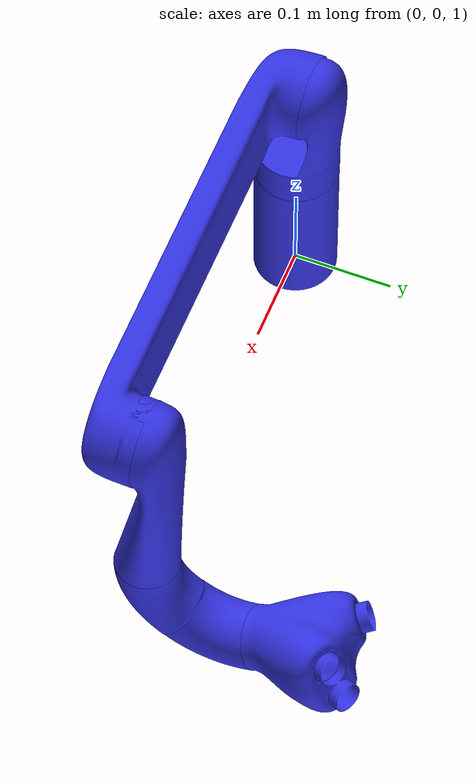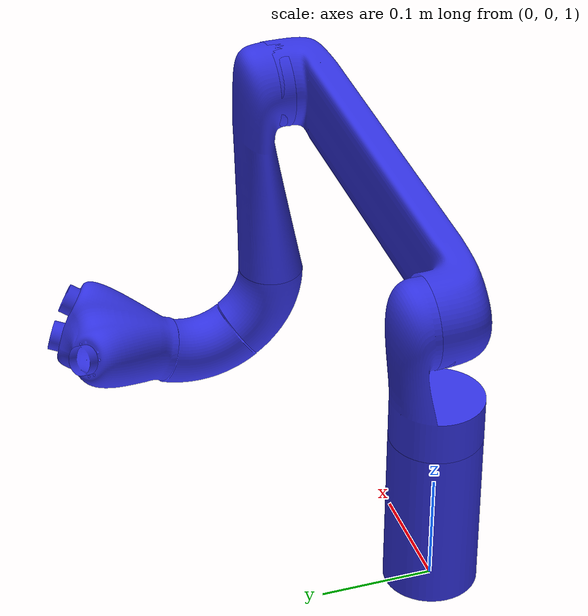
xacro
<?xml version="1.0"?>
<robot name="jaco"
	xmlns:xi="http://www.w3.org/2001/XInclude"
	xmlns:gazebo="http://playerstage.sourceforge.net/gazebo/xmlschema/#gz"
	xmlns:model="http://playerstage.sourceforge.net/gazebo/xmlschema/#model"
	xmlns:sensor="http://playerstage.sourceforge.net/gazebo/xmlschema/#sensor"
	xmlns:body="http://playerstage.sourceforge.net/gazebo/xmlschema/#body"
	xmlns:geom="http://playerstage.sourceforge.net/gazebo/xmlschema/#geom"
	xmlns:joint="http://playerstage.sourceforge.net/gazebo/xmlschema/#joint"
	xmlns:interface="http://playerstage.sourceforge.net/gazebo/xmlschema/#interface"
	xmlns:rendering="http://playerstage.sourceforge.net/gazebo/xmlschema/#rendering"
	xmlns:renderable="http://playerstage.sourceforge.net/gazebo/xmlschema/#renderable"
	xmlns:controller="http://playerstage.sourceforge.net/gazebo/xmlschema/#controller"
	xmlns:physics="http://playerstage.sourceforge.net/gazebo/xmlschema/#physics">

	<gazebo>
		<!-- controller for the 6 arm joints -->
		<controller:gazebo_ros_controller_manager name="gazebo_ros_controller_manager" plugin="libgazebo_ros_controller_manager.so">
		<alwaysOn>true</alwaysOn>
		<updateRate>1000.0</updateRate>
		<robotParam>robot_description</robotParam>
		</controller:gazebo_ros_controller_manager>
	</gazebo>

	<include filename="$(find jaco_description)/urdf/gazebo/jaco.gazebo.xacro" />
	<include filename="$(find jaco_description)/urdf/gazebo/jaco.transmissions.xacro" />

	<material name="JacoGrey">
	<color rgba="0.2 0.2 0.9 1.0"/>
	</material>

	<link name="world"/>
	<joint name="base_block_joint" type="fixed">
		<parent link="world" />
		<origin xyz="0 0 1" rpy="0 0 0" />
		<child link="jaco_base_link" />
	</joint>

	<!-- The base joint & link -->

	<link name="jaco_base_link">
		<inertial>
			<mass value="6" />
			<!--origin xyz="0 0 -0.0525" rpy="0 0 0"/-->
          		<origin xyz="0 0 0.0" rpy="0 0 0"/>
			<inertia ixx="100"  ixy="0"  ixz="0" iyy="100" iyz="0" izz="100" />
		</inertial>
		<visual>
			<material name="JacoGrey" />
			<!--origin xyz="0 0 -0.0525" rpy="0 0 0"/-->
			<geometry>
				<mesh filename="package://jaco_description/meshes/joint_1.dae"
				scale="0.001 0.001 0.001"/>
			</geometry>
		</visual>
		<collision>
			<!--origin xyz="0 0 -0.0525" rpy="0 0 0"/-->
			<geometry>
				<mesh filename="package://jaco_description/meshes/joint_1.dae"
				scale="0.001 0.001 0.001"/>
			</geometry>
		</collision>
	</link>
	<gazebo reference="jaco_base_link">
		<material>Gazebo/Yellow</material>
		<turnGravityOff>true</turnGravityOff>
	</gazebo>

	<!-- First revolute joint & link -->

	<joint name="jaco_joint_1" type="revolute">
		<!--origin xyz="0 0 0.2102" rpy="0 0 0"/-->
        	<origin xyz="0 0 0.2725" rpy="0 0 0"/>
		<axis xyz="0 0 -1" rpy="0 0 0"/>
		<parent link="jaco_base_link"/>
		<child link="jaco_link_1"/>
		<limit lower="-3.1415926535897931" upper="3.1415926535897931" effort="1" velocity="2.0"/>
	</joint>
	<link name="jaco_link_1">
		<inertial>
			<mass value="4.5"/>

			<inertia ixx="100.0" ixy="0.0"  ixz="0.0"  iyy="100.0"  iyz="0.0"  izz="100.0" />
			<origin/>
		</inertial>
		<visual>
			<material name="JacoGrey" />
			<origin xyz="0 0 -0.12" rpy="0 0 -1.570796327"/>
			<geometry>
				<mesh filename="package://jaco_description/meshes/joint_2.dae"
				scale="0.001 0.001 0.001"/>
			</geometry>
		</visual>
		<collision>
			<origin xyz="0 0 -0.12" rpy="0 0 -1.570796327"/>
			<geometry>
				<mesh filename="package://jaco_description/meshes/joint_2.dae"
				scale="0.001 0.001 0.001"/>
			</geometry>
		</collision>
	</link>
	<gazebo reference="jaco_link_1">
		<material>Gazebo/Red</material>
		<turnGravityOff>true</turnGravityOff>
	</gazebo>

	<!-- Second revolute joint & link -->

	<joint name="jaco_joint_2" type="revolute">
		<origin xyz="0 0 0" rpy="-1.570796327 0 0"/>
		<axis xyz="0 0 1"/>
		<parent link="jaco_link_1"/>
		<child link="jaco_link_2"/>
		<limit lower="-3.6651914291881" upper="0.57595865315813" effort="1" velocity="3.1415926535897931"/>
	</joint>
	<link name="jaco_link_2">
		<inertial>
			<mass value="3.8"/>
			<inertia ixx="100.0" ixy="0.0"  ixz="0.0"  iyy="100.0"  iyz="0.0"  izz="100.0" />
			<origin/>
		</inertial>
		<visual>
			<material name="JacoGrey" />
			<origin xyz="0 0 0.015" rpy="0 1.570796327 0"/>
			<geometry>
				<mesh filename="package://jaco_description/meshes/joint_3.dae"
				scale="0.001 0.001 0.001"/>
			</geometry>
		</visual>
		<collision>
			<origin xyz="0 0 0.015" rpy="0 1.570796327 0"/>
			<geometry>
				<mesh filename="package://jaco_description/meshes/joint_3.dae"
				scale="0.001 0.001 0.001"/>
			</geometry>
		</collision>
	</link>
	<gazebo reference="jaco_link_2">
		<material>Gazebo/Blue</material>
		<turnGravityOff>true</turnGravityOff>
	</gazebo>

	<!-- Third revolute joint & link -->

	<joint name="jaco_joint_3" type="revolute">
		<origin xyz="0.4100 0 0.012" rpy="0 0 0"/>
		<axis xyz="0 0 -1"/>
		<parent link="jaco_link_2"/>
		<child link="jaco_link_3"/>
		<limit lower="-1.221730476396" upper="4.2935099599061" effort="1" velocity="3.1415926535897931"/>
	</joint>
	<link name="jaco_link_3">
		<inertial>
			<mass value="2"/>
			<inertia ixx="100.0" ixy="0.0"  ixz="0.0"  iyy="100.0"  iyz="0.0"  izz="100.0" />
			<origin/>
		</inertial>
		<visual>
			<material name="JacoGrey" />
			<origin xyz="0 0 -0.012" rpy="0 1.570796327 1.570796327"/>
			<geometry>
				<mesh filename="package://jaco_description/meshes/joint_4.dae"
				scale="1.000 1.000 1.000"/>
			</geometry>
		</visual>
		<collision>
			<origin xyz="0 0 -0.012" rpy="0 1.570796327 1.570796327"/>
			<geometry>
				<mesh filename="package://jaco_description/meshes/joint_4.dae"
				scale="1.000 1.000 1.000"/>
			</geometry>
		</collision>
	</link>
	<gazebo reference="jaco_link_3">
		<material>Gazebo/Red</material>
		<turnGravityOff>true</turnGravityOff>
	</gazebo>

	<!-- Fourth revolute joint & link -->
	<joint name="jaco_joint_4" type="revolute">
		<origin xyz="0 0.24927682300748782 0 " rpy="-1.570796327 0 0"/>
		<axis xyz="0 0 -1"/>
		<parent link="jaco_link_3"/>
		<child link="jaco_link_4"/>
		<limit lower="-3.1415926535897931" upper="3.1415926535897931" effort="1" velocity="2.0"/>
	</joint>
	<link name="jaco_link_4">
		<inertial>
			<mass value="1.5"/>
			<inertia ixx="100.0" ixy="0.0"  ixz="0.0"  iyy="100.0"  iyz="0.0"  izz="100.0" />
			<origin/>
		</inertial>
		<visual>
			<material name="JacoGrey" />
			<origin xyz="0 0 -0.042276823" rpy="0 0 -1.570796327"/>
			<geometry>
				<mesh filename="package://jaco_description/meshes/joint_5.dae"
				scale="0.001 0.001 0.001"/>
			</geometry>
		</visual>
		<collision>
			<origin xyz="0 0 -0.042276823" rpy="0 0 -1.570796327"/>
			<geometry>
				<mesh filename="package://jaco_description/meshes/joint_5.dae"
				scale="0.001 0.001 0.001"/>
			</geometry>
		</collision>
	</link>
	<gazebo reference="jaco_link_4">
		<material>Gazebo/Blue</material>
		<turnGravityOff>true</turnGravityOff>
	</gazebo>

	<!-- Fifth revolute joint & link -->
	<joint name="jaco_joint_5" type="revolute">
		<origin xyz="0 -0.069262292 0.048497979" rpy="0.959931089 0 0"/>
		<axis xyz="0 0 -1"/>
		<parent link="jaco_link_4"/>
		<child link="jaco_link_5"/>
		<limit lower="-3.1415926535897931" upper="3.1415926535897931" effort="1" velocity="2.0"/>
	</joint>
	<link name="jaco_link_5">
		<inertial>
			<mass value="1.0"/>
			<inertia ixx="100.0" ixy="0.0"  ixz="0.0"  iyy="100.0"  iyz="0.0"  izz="100.0" />
			<origin/>
		</inertial>
		<visual>
			<material name="JacoGrey" />
			<origin xyz="0 0 -0.042276823" rpy="0 -0.959931089 1.570796327"/>
			<geometry>
				<mesh filename="package://jaco_description/meshes/joint_6.dae"
				scale="0.001 0.001 0.001"/>
			</geometry>
		</visual>
		<collision>
			<origin xyz="0 0 -0.042276823" rpy="0 -0.959931089 1.570796327"/>
			<geometry>
				<mesh filename="package://jaco_description/meshes/joint_6.dae"
				scale="0.001 0.001 0.001"/>
			</geometry>
		</collision>
	</link>
	<gazebo reference="jaco_link_5">
		<material>Gazebo/Red</material>
		<turnGravityOff>true</turnGravityOff>
	</gazebo>

	<!-- Sixth revolute joint & link -->
	<joint name="jaco_joint_6" type="revolute">
		<!--origin xyz="0 -0.186174274 0.13036063" rpy="0.959931089 0 0"/-->
		<origin xyz="0 -0.186174274 0.13036063" rpy="-0.959931089 0 3.1415926535897931"/>
		<origin xyz="0 0 0" rpy="0 0 -3.14"/>
		<axis xyz="0 0 -1"/>
		<parent link="jaco_link_5"/>
		<child link="jaco_link_6"/>
		<limit lower="-3.5415926535897931" upper="3.5415926535897931" effort="1" velocity="2.0"/>
	</joint>
	<link name="jaco_link_6">
		<inertial>
			<mass value="0.8"/>
			<inertia ixx="100.0" ixy="0.0"  ixz="0.0"  iyy="100.0"  iyz="0.0"  izz="100.0" />
			<origin/>
		</inertial>
		<visual>
			<material name="JacoGrey" />
			<!--origin xyz="0 0 -0.1850" rpy="0 0 -3.1415926535897931"/-->
			<origin xyz="0 0 -0.1850" rpy="0 0 0"/>
			<geometry>
				<mesh filename="package://jaco_description/meshes/hand_with_noFinger.dae"
				scale="0.001 0.001 0.001"/>
			</geometry>
		</visual>
		<collision>
			<!--origin xyz="0 0 -0.1850" rpy="0 0 -3.1415926535897931"/-->
			<origin xyz="0 0 -0.1850" rpy="0 0 0"/>
			<geometry>
				<mesh filename="package://jaco_description/meshes/hand_with_noFinger.dae"
				scale="0.001 0.001 0.001"/>
			</geometry>
		</collision>
	</link>
	<gazebo reference="jaco_link_6">
		<material>Gazebo/Blue</material>
		<turnGravityOff>true</turnGravityOff>
	</gazebo>

	<!-- first finger joint & link -->
   	<joint name="jaco_finger_joint_1" type="revolute">
        <!--origin xyz="-0.036 -0.021 -0.07" rpy="0 0 0"/--> <!-- changed becuase it look funny in simulation-->
        <origin xyz="-0.036 -0.021 -0.09" rpy="0 0 0"/>
        <axis xyz="0 1 0"/>
        <parent link="jaco_link_6"/>
        <child link="jaco_finger_link_1"/>
		<limit lower="-3.1415926535897931" upper="3.1415926535897931" effort="1" velocity="2.0"/>
      </joint>
      <link name="jaco_finger_link_1">
		<inertial>
			<mass value="0.05"/>
			<inertia ixx="10.0" ixy="0.0"  ixz="0.0"  iyy="10.0"  iyz="0.0"  izz="10.0" />
			<origin/>
		</inertial>
        <visual>
			<origin xyz="0 0 0" rpy="0 0 0"/>
          <geometry>
            <mesh filename="package://jaco_description/meshes/finger.dae"
                scale="1 1 1"/>
          </geometry>
        </visual>
	<collision>
			<origin xyz="0 0 0" rpy="0 0 0"/>
	<geometry>
            <mesh filename="package://jaco_description/meshes/finger.dae"
                scale="1 1 1"/>
	</geometry>
	</collision>
      </link>
	<gazebo reference="jaco_finger_link_1">
		<material>Gazebo/Blue</material>
		<turnGravityOff>true</turnGravityOff>
	</gazebo>

	<!-- second finger joint & link -->
   	<joint name="jaco_finger_joint_2" type="revolute">
        <!--origin xyz="-0.036 0.021 -0.07" rpy="0 0 0"/-->
	<origin xyz="-0.036 0.021 -0.09" rpy="0 0 0"/>
        <axis xyz="0 1 0"/>
        <parent link="jaco_link_6"/>
        <child link="jaco_finger_link_2"/>
		<limit lower="-3.1415926535897931" upper="3.1415926535897931" effort="1" velocity="2.0"/>
      </joint>
      <link name="jaco_finger_link_2">
		<inertial>
			<mass value="0.05"/>
			<inertia ixx="10.0" ixy="0.0"  ixz="0.0"  iyy="10.0"  iyz="0.0"  izz="10.0" />
			<origin/>
		</inertial>
        <visual>
			<origin xyz="0 0 0" rpy="0 0 0"/>
          <geometry>
            <mesh filename="package://jaco_description/meshes/finger.dae"
                scale="1 1 1"/>
          </geometry>
        </visual>
	<collision>
			<origin xyz="0 0 0" rpy="0 0 0"/>
	<geometry>
            <mesh filename="package://jaco_description/meshes/finger.dae"
                scale="1 1 1"/>
	</geometry>
	</collision>
        </link>
	<gazebo reference="jaco_finger_link_2">
		<material>Gazebo/Blue</material>
		<turnGravityOff>true</turnGravityOff>
	</gazebo>

	<!-- third finger joint & link -->
   	<joint name="jaco_finger_joint_3" type="revolute">
        <!--origin xyz="0.036 -0 -0.07" rpy="0 0 3.14"/-->
	<origin xyz="0.036 -0 -0.09" rpy="0 0 3.14"/>
        <axis xyz="0 1 0"/>
        <parent link="jaco_link_6"/>
        <child link="jaco_finger_link_3"/>
		<limit lower="-3.1415926535897931" upper="3.1415926535897931" effort="1" velocity="2.0"/>
      </joint>
      <link name="jaco_finger_link_3">
		<inertial>
			<mass value="0.05"/>
			<inertia ixx="10.0" ixy="0.0"  ixz="0.0"  iyy="10.0"  iyz="0.0"  izz="10.0" />
			<origin/>
		</inertial>
        <visual>
			<origin xyz="0 0 0" rpy="0 0 0"/>
          <geometry>
            <mesh filename="package://jaco_description/meshes/finger.dae"
                scale="1 1 1"/>
          </geometry>
        </visual>
	<collision>
			<origin xyz="0 0 0" rpy="0 0 0"/>
	<geometry>
            <mesh filename="package://jaco_description/meshes/finger.dae"
                scale="1 1 1"/>
	</geometry>
	</collision>
      </link>
	<gazebo reference="jaco_finger_link_3">
		<material>Gazebo/Blue</material>
		<turnGravityOff>true</turnGravityOff>
	</gazebo>

</robot>
